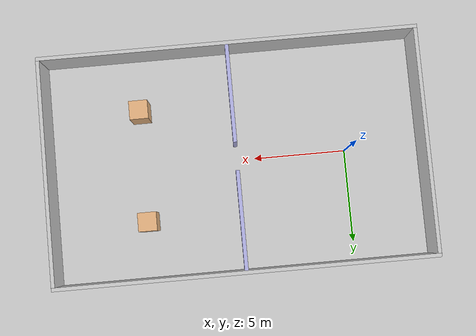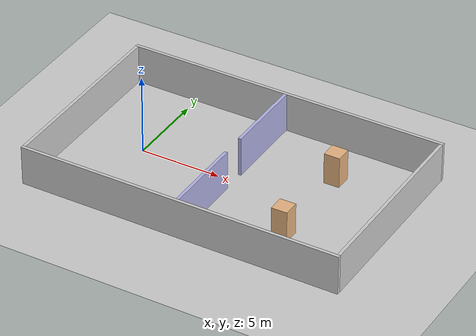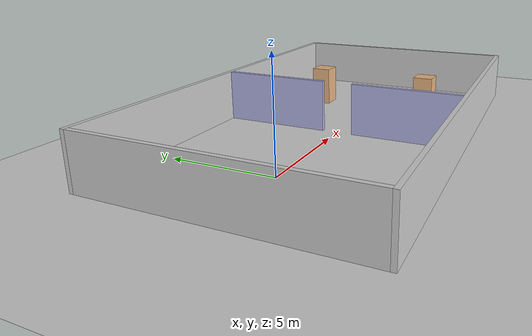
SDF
<?xml version="1.0"?>
<!--
  Örnek depo: 20 x 12 m oda, ortada 1,5 m'lik kapılı bir bölme duvarı ve iki sütun.
  Duvarlar 2,5 m yüksek: robotun üst lidarı (zeminden ~1,7 m) de görebilsin.
-->
<sdf version="1.6">
  <world name="depo">
    <include><uri>model://sun</uri></include>
    <include><uri>model://ground_plane</uri></include>

    <physics type="ode">
      <max_step_size>0.001</max_step_size>
      <real_time_factor>1.0</real_time_factor>
      <real_time_update_rate>1000</real_time_update_rate>
    </physics>

    <model name="duvarlar">
      <static>true</static>
      <!-- Dış duvarlar: x = -4 … 16, y = -6 … 6 -->
      <link name="kuzey"><pose>6 6.1 1.25 0 0 0</pose>
        <collision name="c"><geometry><box><size>20.4 0.2 2.5</size></box></geometry></collision>
        <visual name="v"><geometry><box><size>20.4 0.2 2.5</size></box></geometry><material><ambient>0.8 0.8 0.8 1</ambient><diffuse>0.8 0.8 0.8 1</diffuse></material></visual></link>
      <link name="guney"><pose>6 -6.1 1.25 0 0 0</pose>
        <collision name="c"><geometry><box><size>20.4 0.2 2.5</size></box></geometry></collision>
        <visual name="v"><geometry><box><size>20.4 0.2 2.5</size></box></geometry><material><ambient>0.8 0.8 0.8 1</ambient><diffuse>0.8 0.8 0.8 1</diffuse></material></visual></link>
      <link name="bati"><pose>-4.1 0 1.25 0 0 0</pose>
        <collision name="c"><geometry><box><size>0.2 12.0 2.5</size></box></geometry></collision>
        <visual name="v"><geometry><box><size>0.2 12.0 2.5</size></box></geometry><material><ambient>0.8 0.8 0.8 1</ambient><diffuse>0.8 0.8 0.8 1</diffuse></material></visual></link>
      <link name="dogu"><pose>16.1 0 1.25 0 0 0</pose>
        <collision name="c"><geometry><box><size>0.2 12.0 2.5</size></box></geometry></collision>
        <visual name="v"><geometry><box><size>0.2 12.0 2.5</size></box></geometry><material><ambient>0.8 0.8 0.8 1</ambient><diffuse>0.8 0.8 0.8 1</diffuse></material></visual></link>
      <!-- Bölme duvarı x = 6, ortasında y = -0,75 … +0,75 arası 1,5 m kapı -->
      <link name="bolme_kuzey"><pose>6 3.375 1.25 0 0 0</pose>
        <collision name="c"><geometry><box><size>0.2 5.25 2.5</size></box></geometry></collision>
        <visual name="v"><geometry><box><size>0.2 5.25 2.5</size></box></geometry><material><ambient>0.7 0.7 0.9 1</ambient><diffuse>0.7 0.7 0.9 1</diffuse></material></visual></link>
      <link name="bolme_guney"><pose>6 -3.375 1.25 0 0 0</pose>
        <collision name="c"><geometry><box><size>0.2 5.25 2.5</size></box></geometry></collision>
        <visual name="v"><geometry><box><size>0.2 5.25 2.5</size></box></geometry><material><ambient>0.7 0.7 0.9 1</ambient><diffuse>0.7 0.7 0.9 1</diffuse></material></visual></link>
      <!-- İki sütun -->
      <link name="sutun_1"><pose>11 3 1.0 0 0 0</pose>
        <collision name="c"><geometry><box><size>1 1 2.0</size></box></geometry></collision>
        <visual name="v"><geometry><box><size>1 1 2.0</size></box></geometry><material><ambient>0.9 0.7 0.5 1</ambient><diffuse>0.9 0.7 0.5 1</diffuse></material></visual></link>
      <link name="sutun_2"><pose>11 -3 1.0 0 0 0</pose>
        <collision name="c"><geometry><box><size>1 1 2.0</size></box></geometry></collision>
        <visual name="v"><geometry><box><size>1 1 2.0</size></box></geometry><material><ambient>0.9 0.7 0.5 1</ambient><diffuse>0.9 0.7 0.5 1</diffuse></material></visual></link>
    </model>
  </world>
</sdf>
